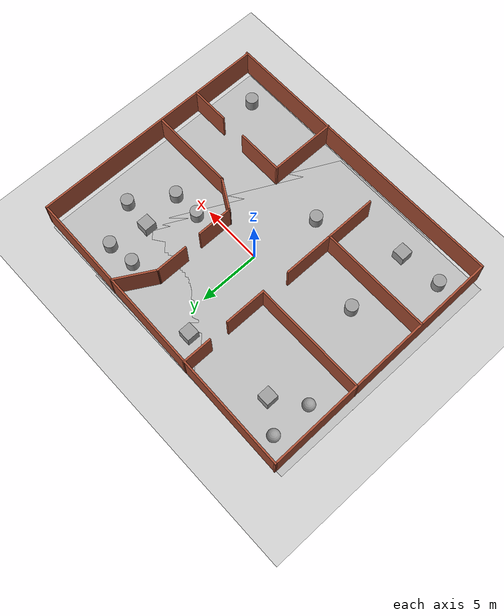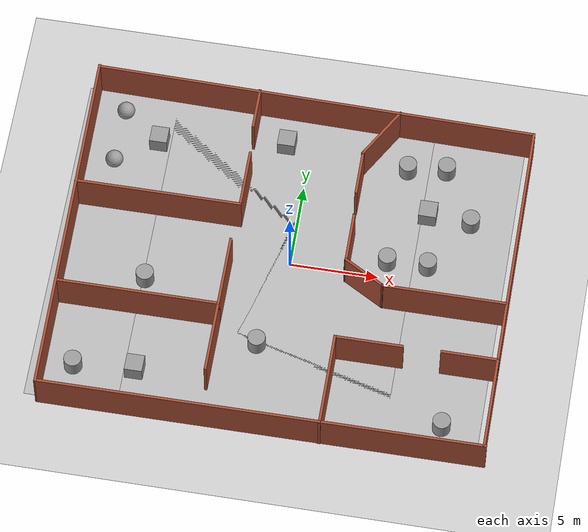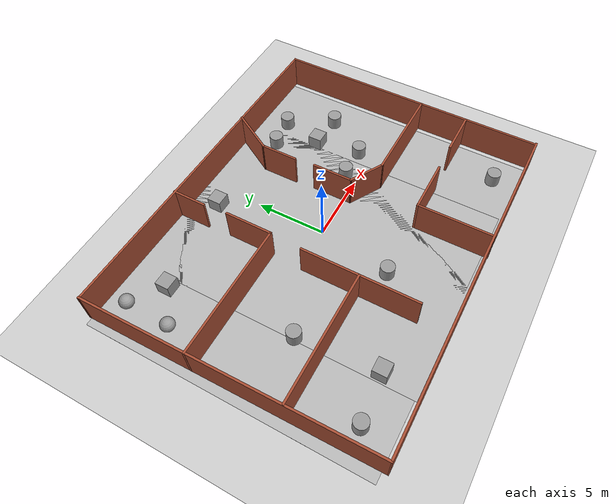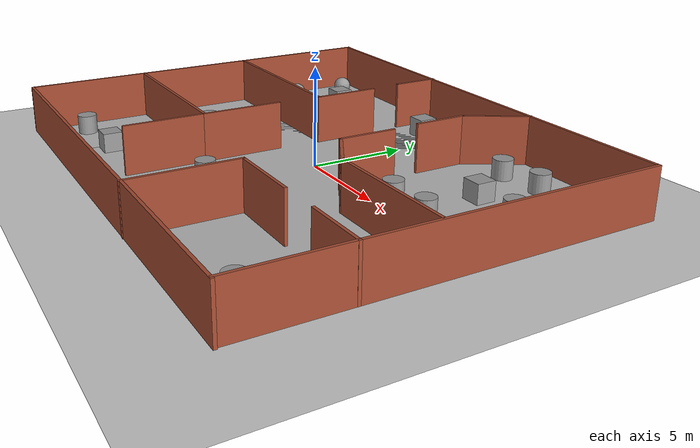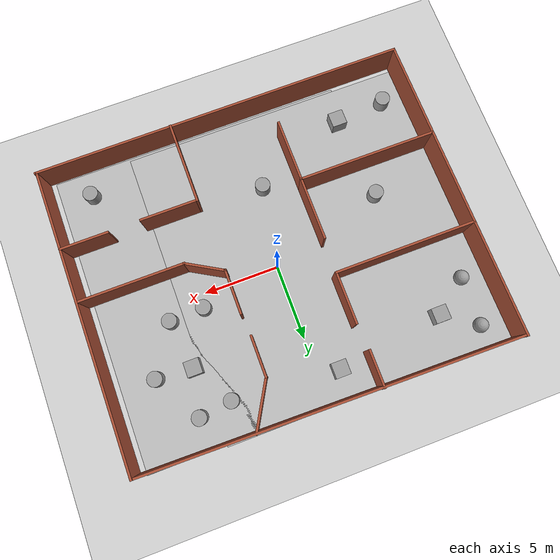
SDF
<sdf version="1.6">
 <world name="default">
  <light name="sun" type="directional">
   <pose>0 0 10 0 -0 0</pose>
   <diffuse>0.8 0.8 0.8 1</diffuse>
   <specular>0.2 0.2 0.2 1</specular>
   <attenuation>
    <range>1000</range>
    <constant>0.9</constant>
    <linear>0.01</linear>
    <quadratic>0.001</quadratic>
   </attenuation>
   <direction>-0.5 0.1 -0.9</direction>
  </light>
  <model name="ground_plane">
   <static>1</static>
   <link name="link">
    <collision name="collision">
     <geometry><plane><normal>0 0 1</normal><size>100 100</size></plane></geometry>
     <surface>
      <contact><collide_bitmask>65535</collide_bitmask></contact>
      <friction><ode><mu>100</mu><mu2>50</mu2></ode></friction>
     </surface>
    </collision>
    <visual name="visual">
     <cast_shadows>0</cast_shadows>
     <geometry><plane><normal>0 0 1</normal><size>100 100</size></plane></geometry>
     <material>
      <script><uri>file://media/materials/scripts/gazebo.material</uri><name>Gazebo/Grey</name></script>
     </material>
    </visual>
   </link>
  </model>
  <gravity>0 0 -9.8</gravity>
  <magnetic_field>6e-06 2.3e-05 -4.2e-05</magnetic_field>
  <atmosphere type="adiabatic"/>
  <physics name="default_physics" default="0" type="ode">
   <max_step_size>0.001</max_step_size>
   <real_time_factor>1</real_time_factor>
   <real_time_update_rate>1000</real_time_update_rate>
  </physics>
  <scene><ambient>0.4 0.4 0.4 1</ambient><background>0.7 0.7 0.7 1</background><shadows>1</shadows></scene>
  <audio><device>default</device></audio>
  <spherical_coordinates>
   <surface_model>EARTH_WGS84</surface_model>
   <latitude_deg>0</latitude_deg>
   <longitude_deg>0</longitude_deg>
   <elevation>0</elevation>
   <heading_deg>0</heading_deg>
  </spherical_coordinates>
  <model name="test2">
   <pose>-0.032931 -0.526272 0 0 -0 0</pose>
   <link name="Wall_0">
    <collision name="Wall_0_Collision">
     <geometry><box><size>20.5677 0.15 2.5</size></box></geometry>
     <pose>0 0 1.25 0 -0 0</pose>
    </collision>
    <visual name="Wall_0_Visual">
     <pose>0 0 1.25 0 -0 0</pose>
     <geometry><box><size>20.5677 0.15 2.5</size></box></geometry>
     <material>
      <script><uri>file://media/materials/scripts/gazebo.material</uri><name>Gazebo/Bricks</name></script>
      <ambient>1 1 1 1</ambient>
     </material>
     <meta><layer>0</layer></meta>
    </visual>
    <pose>-12.4244 0.000995 0 0 -0 1.58303</pose>
   </link>
   <link name="Wall_11">
    <collision name="Wall_11_Collision">
     <geometry><box><size>3.5 0.15 2.5</size></box></geometry>
     <pose>0 0 1.25 0 -0 0</pose>
    </collision>
    <visual name="Wall_11_Visual">
     <pose>0 0 1.25 0 -0 0</pose>
     <geometry><box><size>3.5 0.15 2.5</size></box></geometry>
     <material>
      <script><uri>file://media/materials/scripts/gazebo.material</uri><name>Gazebo/Bricks</name></script>
      <ambient>1 1 1 1</ambient>
     </material>
     <meta><layer>0</layer></meta>
    </visual>
    <pose>-3.11259 4.23801 0 0 -0 1.5708</pose>
   </link>
   <link name="Wall_14">
    <collision name="Wall_14_Collision">
     <geometry><box><size>9.5 0.15 2.5</size></box></geometry>
     <pose>0 0 1.25 0 -0 0</pose>
    </collision>
    <visual name="Wall_14_Visual">
     <pose>0 0 1.25 0 -0 0</pose>
     <geometry><box><size>9.5 0.15 2.5</size></box></geometry>
     <material>
      <script><uri>file://media/materials/scripts/gazebo.material</uri><name>Gazebo/Bricks</name></script>
      <ambient>1 1 1 1</ambient>
     </material>
     <meta><layer>0</layer></meta>
    </visual>
    <pose>-7.78759 2.563 0 0 -0 3.14159</pose>
   </link>
   <link name="Wall_16">
    <collision name="Wall_16_Collision">
     <geometry><box><size>2.5 0.15 2.5</size></box></geometry>
     <pose>0 0 1.25 0 -0 0</pose>
    </collision>
    <visual name="Wall_16_Visual">
     <pose>0 0 1.25 0 -0 0</pose>
     <geometry><box><size>2.5 0.15 2.5</size></box></geometry>
     <material>
      <script><uri>file://media/materials/scripts/gazebo.material</uri><name>Gazebo/Bricks</name></script>
      <ambient>1 1 1 1</ambient>
     </material>
     <meta><layer>0</layer></meta>
    </visual>
    <pose>-3.24691 8.87494 0 0 -0 -1.5708</pose>
   </link>
   <link name="Wall_18">
    <collision name="Wall_18_Collision">
     <geometry><box><size>9.25 0.15 2.5</size></box></geometry>
     <pose>0 0 1.25 0 -0 0</pose>
    </collision>
    <visual name="Wall_18_Visual">
     <pose>0 0 1.25 0 -0 0</pose>
     <geometry><box><size>9.25 0.15 2.5</size></box></geometry>
     <material>
      <script><uri>file://media/materials/scripts/gazebo.material</uri><name>Gazebo/Bricks</name></script>
      <ambient>1 1 1 1</ambient>
     </material>
     <meta><layer>0</layer></meta>
    </visual>
    <pose>-7.79234 -3.86071 0 0 -0 0</pose>
   </link>
   <link name="Wall_19">
    <collision name="Wall_19_Collision">
     <geometry><box><size>4.25 0.15 2.5</size></box></geometry>
     <pose>0 0 1.25 0 -0 0</pose>
    </collision>
    <visual name="Wall_19_Visual">
     <pose>0 0 1.25 0 -0 0</pose>
     <geometry><box><size>4.25 0.15 2.5</size></box></geometry>
     <material>
      <script><uri>file://media/materials/scripts/gazebo.material</uri><name>Gazebo/Bricks</name></script>
      <ambient>1 1 1 1</ambient>
     </material>
     <meta><layer>0</layer></meta>
    </visual>
    <pose>-3.24234 -1.81071 0 0 -0 1.5708</pose>
   </link>
   <link name="Wall_21">
    <collision name="Wall_21_Collision">
     <geometry><box><size>4.25 0.15 2.5</size></box></geometry>
     <pose>0 0 1.25 0 -0 0</pose>
    </collision>
    <visual name="Wall_21_Visual">
     <pose>0 0 1.25 0 -0 0</pose>
     <geometry><box><size>4.25 0.15 2.5</size></box></geometry>
     <material>
      <script><uri>file://media/materials/scripts/gazebo.material</uri><name>Gazebo/Bricks</name></script>
      <ambient>1 1 1 1</ambient>
     </material>
     <meta><layer>0</layer></meta>
    </visual>
    <pose>-3.24234 -5.91071 0 0 -0 -1.5708</pose>
   </link>
   <link name="Wall_23">
    <collision name="Wall_23_Collision">
     <geometry><box><size>3.5 0.15 2.5</size></box></geometry>
     <pose>0 0 1.25 0 -0 0</pose>
    </collision>
    <visual name="Wall_23_Visual">
     <pose>0 0 1.25 0 -0 0</pose>
     <geometry><box><size>3.5 0.15 2.5</size></box></geometry>
     <material>
      <script><uri>file://media/materials/scripts/gazebo.material</uri><name>Gazebo/Bricks</name></script>
      <ambient>1 1 1 1</ambient>
     </material>
     <meta><layer>0</layer></meta>
    </visual>
    <pose>3.99446 8.43884 0 0 -0 -2.0944</pose>
   </link>
   <link name="Wall_24">
    <collision name="Wall_24_Collision">
     <geometry><box><size>2.75 0.15 2.5</size></box></geometry>
     <pose>0 0 1.25 0 -0 0</pose>
    </collision>
    <visual name="Wall_24_Visual">
     <pose>0 0 1.25 0 -0 0</pose>
     <geometry><box><size>2.75 0.15 2.5</size></box></geometry>
     <material>
      <script><uri>file://media/materials/scripts/gazebo.material</uri><name>Gazebo/Bricks</name></script>
      <ambient>1 1 1 1</ambient>
     </material>
     <meta><layer>0</layer></meta>
    </visual>
    <pose>3.15696 5.68825 0 0 -0 -1.5708</pose>
   </link>
   <link name="Wall_26">
    <collision name="Wall_26_Collision">
     <geometry><box><size>3 0.15 2.5</size></box></geometry>
     <pose>0 0 1.25 0 -0 0</pose>
    </collision>
    <visual name="Wall_26_Visual">
     <pose>0 0 1.25 0 -0 0</pose>
     <geometry><box><size>3 0.15 2.5</size></box></geometry>
     <material>
      <script><uri>file://media/materials/scripts/gazebo.material</uri><name>Gazebo/Bricks</name></script>
      <ambient>1 1 1 1</ambient>
     </material>
     <meta><layer>0</layer></meta>
    </visual>
    <pose>3.28039 1.4556 0 0 -0 -1.5708</pose>
   </link>
   <link name="Wall_27">
    <collision name="Wall_27_Collision">
     <geometry><box><size>2.75 0.15 2.5</size></box></geometry>
     <pose>0 0 1.25 0 -0 0</pose>
    </collision>
    <visual name="Wall_27_Visual">
     <pose>0 0 1.25 0 -0 0</pose>
     <geometry><box><size>2.75 0.15 2.5</size></box></geometry>
     <material>
      <script><uri>file://media/materials/scripts/gazebo.material</uri><name>Gazebo/Bricks</name></script>
      <ambient>1 1 1 1</ambient>
     </material>
     <meta><layer>0</layer></meta>
    </visual>
    <pose>4.40622 -0.619397 0 0 -0 -0.523599</pose>
   </link>
   <link name="Wall_28">
    <collision name="Wall_28_Collision">
     <geometry><box><size>7 0.15 2.5</size></box></geometry>
     <pose>0 0 1.25 0 -0 0</pose>
    </collision>
    <visual name="Wall_28_Visual">
     <pose>0 0 1.25 0 -0 0</pose>
     <geometry><box><size>7 0.15 2.5</size></box></geometry>
     <material>
      <script><uri>file://media/materials/scripts/gazebo.material</uri><name>Gazebo/Bricks</name></script>
      <ambient>1 1 1 1</ambient>
     </material>
     <meta><layer>0</layer></meta>
    </visual>
    <pose>8.95706 -1.2694 0 0 -0 0</pose>
   </link>
   <link name="Wall_31">
    <collision name="Wall_31_Collision">
     <geometry><box><size>3.89299 0.15 2.5</size></box></geometry>
     <pose>0 0 1.25 0 -0 0</pose>
    </collision>
    <visual name="Wall_31_Visual">
     <pose>0 0 1.25 0 -0 0</pose>
     <geometry><box><size>3.89299 0.15 2.5</size></box></geometry>
     <material>
      <script><uri>file://media/materials/scripts/gazebo.material</uri><name>Gazebo/Bricks</name></script>
      <ambient>1 1 1 1</ambient>
     </material>
     <meta><layer>0</layer></meta>
    </visual>
    <pose>5.3124 -4.86 0 0 -0 0</pose>
   </link>
   <link name="Wall_34">
    <collision name="Wall_34_Collision">
     <geometry><box><size>3.25 0.15 2.5</size></box></geometry>
     <pose>0 0 1.25 0 -0 0</pose>
    </collision>
    <visual name="Wall_34_Visual">
     <pose>0 0 1.25 0 -0 0</pose>
     <geometry><box><size>3.25 0.15 2.5</size></box></geometry>
     <material>
      <script><uri>file://media/materials/scripts/gazebo.material</uri><name>Gazebo/Bricks</name></script>
      <ambient>1 1 1 1</ambient>
     </material>
     <meta><layer>0</layer></meta>
    </visual>
    <pose>10.9328 -4.82376 0 0 -0 3.14159</pose>
   </link>
   <link name="Wall_36">
    <collision name="Wall_36_Collision">
     <geometry><box><size>5.5 0.15 2.5</size></box></geometry>
     <pose>0 0 1.25 0 -0 0</pose>
    </collision>
    <visual name="Wall_36_Visual">
     <pose>0 0 1.25 0 -0 0</pose>
     <geometry><box><size>5.5 0.15 2.5</size></box></geometry>
     <material>
      <script><uri>file://media/materials/scripts/gazebo.material</uri><name>Gazebo/Bricks</name></script>
      <ambient>1 1 1 1</ambient>
     </material>
     <meta><layer>0</layer></meta>
    </visual>
    <pose>3.4409 -7.535 0 0 -0 -1.5708</pose>
   </link>
   <link name="Wall_4">
    <collision name="Wall_4_Collision">
     <geometry><box><size>20.006 0.15 2.5</size></box></geometry>
     <pose>0 0 1.25 0 -0 0</pose>
    </collision>
    <visual name="Wall_4_Visual">
     <pose>0 0 1.25 0 -0 0</pose>
     <geometry><box><size>20.006 0.15 2.5</size></box></geometry>
     <material>
      <script><uri>file://media/materials/scripts/gazebo.material</uri><name>Gazebo/Bricks</name></script>
      <ambient>1 1 1 1</ambient>
     </material>
     <meta><layer>0</layer></meta>
    </visual>
    <pose>12.4762 -0.198987 0 0 -0 -1.5708</pose>
   </link>
   <link name="Wall_6">
    <collision name="Wall_6_Collision">
     <geometry><box><size>25 0.15 2.5</size></box></geometry>
     <pose>0 0 1.25 0 -0 0</pose>
    </collision>
    <visual name="Wall_6_Visual">
     <pose>0 0 1.25 0 -0 0</pose>
     <geometry><box><size>25 0.15 2.5</size></box></geometry>
     <material>
      <script><uri>file://media/materials/scripts/gazebo.material</uri><name>Gazebo/Bricks</name></script>
      <ambient>1 1 1 1</ambient>
     </material>
     <meta><layer>0</layer></meta>
    </visual>
    <pose>0.12548 -10.1838 0 0 -0 0.001872</pose>
   </link>
   <link name="Wall_8">
    <collision name="Wall_8_Collision">
     <geometry><box><size>25 0.15 2.5</size></box></geometry>
     <pose>0 0 1.25 0 -0 0</pose>
    </collision>
    <visual name="Wall_8_Visual">
     <pose>0 0 1.25 0 -0 0</pose>
     <geometry><box><size>25 0.15 2.5</size></box></geometry>
     <material>
      <script><uri>file://media/materials/scripts/gazebo.material</uri><name>Gazebo/Bricks</name></script>
      <ambient>1 1 1 1</ambient>
     </material>
     <meta><layer>0</layer></meta>
    </visual>
    <pose>-0.126226 9.94892 0 0 -0 -0.017684</pose>
   </link>
   <static>1</static>
  </model>
  <model name="unit_box">
   <pose>-7.35182 -8.01966 0.510495 9e-06 -0 0</pose>
   <link name="link">
    <inertial>
     <mass>1</mass>
     <inertia>
      <ixx>0.166667</ixx>
      <ixy>0</ixy>
      <ixz>0</ixz>
      <iyy>0.166667</iyy>
      <iyz>0</iyz>
      <izz>0.166667</izz>
     </inertia>
    </inertial>
    <collision name="collision"><geometry><box><size>1 1 1</size></box></geometry></collision>
    <visual name="visual">
     <geometry><box><size>1 1 1</size></box></geometry>
     <material>
      <script><name>Gazebo/Grey</name><uri>file://media/materials/scripts/gazebo.material</uri></script>
     </material>
    </visual>
   </link>
  </model>
  <model name="unit_cylinder">
   <pose>-7.82317 -2.29785 0.5105 0 0 -4e-06</pose>
   <link name="link">
    <inertial>
     <mass>1</mass>
     <inertia><ixx>0.145833</ixx><ixy>0</ixy><ixz>0</ixz><iyy>0.145833</iyy><iyz>0</iyz><izz>0.125</izz></inertia>
    </inertial>
    <collision name="collision">
     <geometry><cylinder><radius>0.5</radius><length>1</length></cylinder></geometry>
    </collision>
    <visual name="visual">
     <geometry><cylinder><radius>0.5</radius><length>1</length></cylinder></geometry>
     <material>
      <script><name>Gazebo/Grey</name><uri>file://media/materials/scripts/gazebo.material</uri></script>
     </material>
    </visual>
   </link>
  </model>
  <model name="unit_box_0">
   <pose>-8.60514 6.62494 0.5105 -0 -0 -0</pose>
   <link name="link">
    <inertial>
     <mass>1</mass>
     <inertia>
      <ixx>0.166667</ixx>
      <ixy>0</ixy>
      <ixz>0</ixz>
      <iyy>0.166667</iyy>
      <iyz>0</iyz>
      <izz>0.166667</izz>
     </inertia>
    </inertial>
    <collision name="collision"><geometry><box><size>1 1 1</size></box></geometry></collision>
    <visual name="visual">
     <geometry><box><size>1 1 1</size></box></geometry>
     <material>
      <script><name>Gazebo/Grey</name><uri>file://media/materials/scripts/gazebo.material</uri></script>
     </material>
    </visual>
   </link>
  </model>
  <model name="unit_cylinder_0">
   <pose>5.63441 7.02352 0.510491 1e-06 -0 0</pose>
   <link name="link">
    <inertial>
     <mass>1</mass>
     <inertia><ixx>0.145833</ixx><ixy>0</ixy><ixz>0</ixz><iyy>0.145833</iyy><iyz>0</iyz><izz>0.125</izz></inertia>
    </inertial>
    <collision name="collision">
     <geometry><cylinder><radius>0.5</radius><length>1</length></cylinder></geometry>
    </collision>
    <visual name="visual">
     <geometry><cylinder><radius>0.5</radius><length>1</length></cylinder></geometry>
     <material>
      <script><name>Gazebo/Grey</name><uri>file://media/materials/scripts/gazebo.material</uri></script>
     </material>
    </visual>
   </link>
  </model>
  <model name="unit_cylinder_1">
   <pose>5.37544 0.94832 0.510499 0 -1e-06 -5e-06</pose>
   <link name="link">
    <inertial>
     <mass>1</mass>
     <inertia><ixx>0.145833</ixx><ixy>0</ixy><ixz>0</ixz><iyy>0.145833</iyy><iyz>0</iyz><izz>0.125</izz></inertia>
    </inertial>
    <collision name="collision">
     <geometry><cylinder><radius>0.5</radius><length>1</length></cylinder></geometry>
    </collision>
    <visual name="visual">
     <geometry><cylinder><radius>0.5</radius><length>1</length></cylinder></geometry>
     <material>
      <script><name>Gazebo/Grey</name><uri>file://media/materials/scripts/gazebo.material</uri></script>
     </material>
    </visual>
   </link>
  </model>
  <model name="unit_cylinder_2">
   <pose>7.82124 7.31044 0.510505 9e-06 5e-06 -2e-06</pose>
   <link name="link">
    <inertial>
     <mass>1</mass>
     <inertia><ixx>0.145833</ixx><ixy>0</ixy><ixz>0</ixz><iyy>0.145833</iyy><iyz>0</iyz><izz>0.125</izz></inertia>
    </inertial>
    <collision name="collision">
     <geometry><cylinder><radius>0.5</radius><length>1</length></cylinder></geometry>
    </collision>
    <visual name="visual">
     <geometry><cylinder><radius>0.5</radius><length>1</length></cylinder></geometry>
     <material>
      <script><name>Gazebo/Grey</name><uri>file://media/materials/scripts/gazebo.material</uri></script>
     </material>
    </visual>
   </link>
  </model>
  <model name="unit_cylinder_3">
   <pose>7.66606 1.01836 0.510501 -2e-06 -1e-06 1e-06</pose>
   <link name="link">
    <inertial>
     <mass>1</mass>
     <inertia><ixx>0.145833</ixx><ixy>0</ixy><ixz>0</ixz><iyy>0.145833</iyy><iyz>0</iyz><izz>0.125</izz></inertia>
    </inertial>
    <collision name="collision">
     <geometry><cylinder><radius>0.5</radius><length>1</length></cylinder></geometry>
    </collision>
    <visual name="visual">
     <geometry><cylinder><radius>0.5</radius><length>1</length></cylinder></geometry>
     <material>
      <script><name>Gazebo/Grey</name><uri>file://media/materials/scripts/gazebo.material</uri></script>
     </material>
    </visual>
   </link>
  </model>
  <model name="unit_cylinder_4">
   <pose>9.64974 4.13685 0.510502 3e-06 1e-06 -4e-06</pose>
   <link name="link">
    <inertial>
     <mass>1</mass>
     <inertia><ixx>0.145833</ixx><ixy>0</ixy><ixz>0</ixz><iyy>0.145833</iyy><iyz>0</iyz><izz>0.125</izz></inertia>
    </inertial>
    <collision name="collision">
     <geometry><cylinder><radius>0.5</radius><length>1</length></cylinder></geometry>
    </collision>
    <visual name="visual">
     <geometry><cylinder><radius>0.5</radius><length>1</length></cylinder></geometry>
     <material>
      <script><name>Gazebo/Grey</name><uri>file://media/materials/scripts/gazebo.material</uri></script>
     </material>
    </visual>
   </link>
  </model>
  <model name="unit_sphere">
   <pose>-10.8161 8.15236 0.5105 0 -0 0</pose>
   <link name="link">
    <inertial>
     <mass>1</mass>
     <inertia><ixx>0.1</ixx><ixy>0</ixy><ixz>0</ixz><iyy>0.1</iyy><iyz>0</iyz><izz>0.1</izz></inertia>
    </inertial>
    <collision name="collision"><geometry><sphere><radius>0.5</radius></sphere></geometry></collision>
    <visual name="visual">
     <geometry><sphere><radius>0.5</radius></sphere></geometry>
     <material>
      <script><name>Gazebo/Grey</name><uri>file://media/materials/scripts/gazebo.material</uri></script>
     </material>
    </visual>
   </link>
  </model>
  <model name="unit_sphere_0">
   <pose>-10.9028 4.90277 0.5105 0 -0 0</pose>
   <link name="link">
    <inertial>
     <mass>1</mass>
     <inertia><ixx>0.1</ixx><ixy>0</ixy><ixz>0</ixz><iyy>0.1</iyy><iyz>0</iyz><izz>0.1</izz></inertia>
    </inertial>
    <collision name="collision"><geometry><sphere><radius>0.5</radius></sphere></geometry></collision>
    <visual name="visual">
     <geometry><sphere><radius>0.5</radius></sphere></geometry>
     <material>
      <script><name>Gazebo/Grey</name><uri>file://media/materials/scripts/gazebo.material</uri></script>
     </material>
    </visual>
   </link>
  </model>
  <model name="unit_cylinder_5">
   <pose>-0.974772 -5.37214 0.510497 -5e-06 0 5e-06</pose>
   <link name="link">
    <inertial>
     <mass>1</mass>
     <inertia><ixx>0.145833</ixx><ixy>0</ixy><ixz>0</ixz><iyy>0.145833</iyy><iyz>0</iyz><izz>0.125</izz></inertia>
    </inertial>
    <collision name="collision">
     <geometry><cylinder><radius>0.5</radius><length>1</length></cylinder></geometry>
    </collision>
    <visual name="visual">
     <geometry><cylinder><radius>0.5</radius><length>1</length></cylinder></geometry>
     <material>
      <script><name>Gazebo/Grey</name><uri>file://media/materials/scripts/gazebo.material</uri></script>
     </material>
    </visual>
   </link>
  </model>
  <model name="unit_box_1">
   <pose>-1.40349 7.58561 0.510495 9e-06 -0 0</pose>
   <link name="link">
    <inertial>
     <mass>1</mass>
     <inertia>
      <ixx>0.166667</ixx>
      <ixy>0</ixy>
      <ixz>0</ixz>
      <iyy>0.166667</iyy>
      <iyz>0</iyz>
      <izz>0.166667</izz>
     </inertia>
    </inertial>
    <collision name="collision"><geometry><box><size>1 1 1</size></box></geometry></collision>
    <visual name="visual">
     <geometry><box><size>1 1 1</size></box></geometry>
     <material>
      <script><name>Gazebo/Grey</name><uri>file://media/materials/scripts/gazebo.material</uri></script>
     </material>
    </visual>
   </link>
  </model>
  <model name="unit_box_2">
   <pose>7.19886 4.29879 0.5105 -0 -0 -3e-06</pose>
   <link name="link">
    <inertial>
     <mass>1</mass>
     <inertia>
      <ixx>0.166667</ixx>
      <ixy>0</ixy>
      <ixz>0</ixz>
      <iyy>0.166667</iyy>
      <iyz>0</iyz>
      <izz>0.166667</izz>
     </inertia>
    </inertial>
    <collision name="collision"><geometry><box><size>1 1 1</size></box></geometry></collision>
    <visual name="visual">
     <geometry><box><size>1 1 1</size></box></geometry>
     <material>
      <script><name>Gazebo/Grey</name><uri>file://media/materials/scripts/gazebo.material</uri></script>
     </material>
    </visual>
   </link>
  </model>
  <model name="unit_cylinder_6">
   <pose>-10.7724 -8.31137 0.510489 -3e-06 -0 -2.5e-05</pose>
   <link name="link">
    <inertial>
     <mass>1</mass>
     <inertia><ixx>0.145833</ixx><ixy>0</ixy><ixz>0</ixz><iyy>0.145833</iyy><iyz>0</iyz><izz>0.125</izz></inertia>
    </inertial>
    <collision name="collision">
     <geometry><cylinder><radius>0.5</radius><length>1</length></cylinder></geometry>
    </collision>
    <visual name="visual">
     <geometry><cylinder><radius>0.5</radius><length>1</length></cylinder></geometry>
     <material>
      <script><name>Gazebo/Grey</name><uri>file://media/materials/scripts/gazebo.material</uri></script>
     </material>
    </visual>
   </link>
  </model>
  <model name="unit_cylinder_7">
   <pose>9.88928 -8.79058 0.510504 -4e-06 6e-06 -1.3e-05</pose>
   <link name="link">
    <inertial>
     <mass>1</mass>
     <inertia><ixx>0.145833</ixx><ixy>0</ixy><ixz>0</ixz><iyy>0.145833</iyy><iyz>0</iyz><izz>0.125</izz></inertia>
    </inertial>
    <collision name="collision">
     <geometry><cylinder><radius>0.5</radius><length>1</length></cylinder></geometry>
    </collision>
    <visual name="visual">
     <geometry><cylinder><radius>0.5</radius><length>1</length></cylinder></geometry>
     <material>
      <script><name>Gazebo/Grey</name><uri>file://media/materials/scripts/gazebo.material</uri></script>
     </material>
    </visual>
   </link>
  </model>
  <model name="Floor_room">
   <link name="main">
    <pose>0 0 0.01 0 -0 0</pose>
    <collision name="main_Collision"><geometry><box><size>20 20 0.001</size></box></geometry></collision>
    <visual name="main_Visual">
     <geometry><box><size>20 20 0.001</size></box></geometry>
     <material>
      <script>
       <uri>model://Floor_room/materials/scripts</uri>
       <uri>model://Floor_room/materials/textures</uri>
       <name>floor_room</name>
      </script>
     </material>
    </visual>
   </link>
   <static>1</static>
   <pose>-3.15727 -0.407857 0 0 -0 0</pose>
  </model>
  <model name="Floor_room_0">
   <link name="main">
    <pose>0 0 0.01 0 -0 0</pose>
    <collision name="main_Collision"><geometry><box><size>20 20 0.001</size></box></geometry></collision>
    <visual name="main_Visual">
     <geometry><box><size>20 20 0.001</size></box></geometry>
     <material>
      <script>
       <uri>model://Floor_room/materials/scripts</uri>
       <uri>model://Floor_room/materials/textures</uri>
       <name>floor_room</name>
      </script>
     </material>
    </visual>
   </link>
   <static>1</static>
   <pose>2.03551 -0.551683 0 0 -0 0</pose>
  </model>
 </world>
</sdf>
